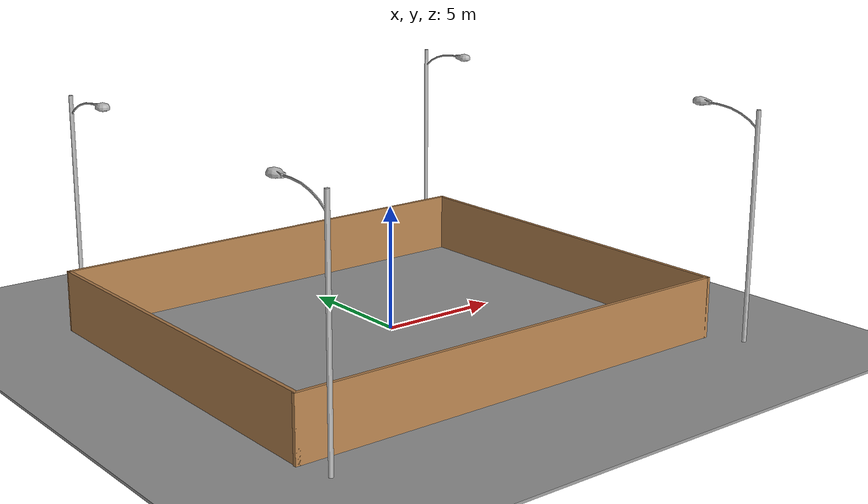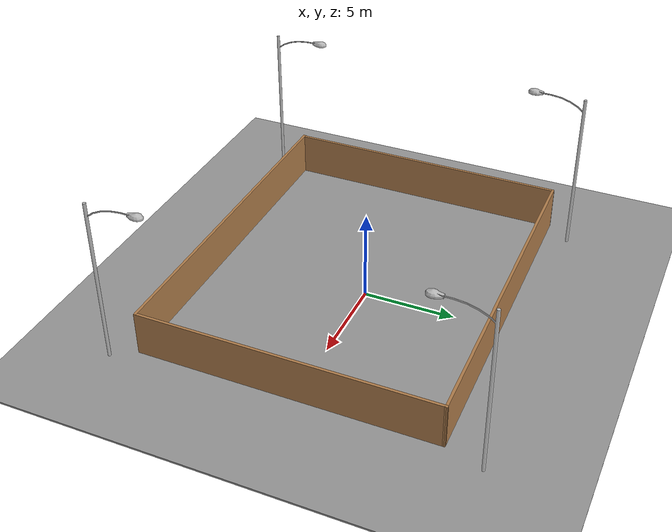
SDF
<sdf version="1.7">
 <world name="default">
  <light name="sun" type="directional">
   <pose>0 0 10 0 -0 0</pose>
   <diffuse>0.8 0.8 0.8 1</diffuse>
   <specular>0.2 0.2 0.2 1</specular>
   <attenuation>
    <range>1000</range>
    <constant>0.9</constant>
    <linear>0.01</linear>
    <quadratic>0.001</quadratic>
   </attenuation>
   <direction>-0.5 0.1 -0.9</direction>
   <spot><inner_angle>0</inner_angle><outer_angle>0</outer_angle><falloff>0</falloff></spot>
  </light>
  <model name="ground_plane">
   <static>1</static>
   <link name="link">
    <collision name="collision">
     <geometry><plane><normal>0 0 1</normal><size>100 100</size></plane></geometry>
     <surface>
      <contact><collide_bitmask>65535</collide_bitmask></contact>
      <friction><ode><mu>100</mu><mu2>50</mu2></ode></friction>
     </surface>
    </collision>
    <visual name="visual">
     <cast_shadows>0</cast_shadows>
     <geometry><plane><normal>0 0 1</normal><size>100 100</size></plane></geometry>
     <material>
      <script><uri>file://media/materials/scripts/gazebo.material</uri><name>Gazebo/Grey</name></script>
     </material>
    </visual>
   </link>
  </model>
  <gravity>0 0 -9.8</gravity>
  <magnetic_field>6e-06 2.3e-05 -4.2e-05</magnetic_field>
  <atmosphere type="adiabatic"/>
  <physics type="ode">
   <max_step_size>0.001</max_step_size>
   <real_time_factor>1</real_time_factor>
   <real_time_update_rate>1000</real_time_update_rate>
  </physics>
  <scene><ambient>0.4 0.4 0.4 1</ambient><background>0.7 0.7 0.7 1</background><shadows>1</shadows></scene>
  <spherical_coordinates>
   <surface_model>EARTH_WGS84</surface_model>
   <latitude_deg>0</latitude_deg>
   <longitude_deg>0</longitude_deg>
   <elevation>0</elevation>
   <heading_deg>0</heading_deg>
  </spherical_coordinates>
  <model name="ground_plane_0">
   <static>1</static>
   <link name="link">
    <collision name="collision">
     <geometry><plane><normal>0 0 1</normal><size>100 100</size></plane></geometry>
     <surface>
      <contact><collide_bitmask>65535</collide_bitmask></contact>
      <friction><ode><mu>100</mu><mu2>50</mu2></ode></friction>
     </surface>
    </collision>
    <visual name="visual">
     <cast_shadows>0</cast_shadows>
     <geometry><plane><normal>0 0 1</normal><size>100 100</size></plane></geometry>
     <material>
      <script><uri>file://media/materials/scripts/gazebo.material</uri><name>Gazebo/Grey</name></script>
     </material>
    </visual>
   </link>
   <pose>1.43216 2.13226 0 0 -0 0</pose>
  </model>
  <model name="Lamp Post">
   <static>1</static>
   <link name="link">
    <collision name="collision">
     <geometry><mesh><uri>model://lamp_post/meshes/lamp_post.dae</uri><scale>3 3 3</scale></mesh></geometry>
    </collision>
    <visual name="visual">
     <geometry><mesh><uri>model://lamp_post/meshes/lamp_post.dae</uri><scale>3 3 3</scale></mesh></geometry>
    </visual>
   </link>
   <pose>-9.05893 8.70312 0 0 -0 0</pose>
  </model>
  <model name="Lamp Post_0">
   <static>1</static>
   <link name="link">
    <collision name="collision">
     <geometry><mesh><uri>model://lamp_post/meshes/lamp_post.dae</uri><scale>3 3 3</scale></mesh></geometry>
    </collision>
    <visual name="visual">
     <geometry><mesh><uri>model://lamp_post/meshes/lamp_post.dae</uri><scale>3 3 3</scale></mesh></geometry>
    </visual>
   </link>
   <pose>9.5851 9.6775 0 0 -0 0</pose>
  </model>
  <model name="Lamp Post_1">
   <static>1</static>
   <link name="link">
    <collision name="collision">
     <geometry><mesh><uri>model://lamp_post/meshes/lamp_post.dae</uri><scale>3 3 3</scale></mesh></geometry>
    </collision>
    <visual name="visual">
     <geometry><mesh><uri>model://lamp_post/meshes/lamp_post.dae</uri><scale>3 3 3</scale></mesh></geometry>
    </visual>
   </link>
   <pose>9.70964 -9.75904 0 0 0 -3.12857</pose>
  </model>
  <model name="Lamp Post_2">
   <static>1</static>
   <link name="link">
    <collision name="collision">
     <geometry><mesh><uri>model://lamp_post/meshes/lamp_post.dae</uri><scale>3 3 3</scale></mesh></geometry>
    </collision>
    <visual name="visual">
     <geometry><mesh><uri>model://lamp_post/meshes/lamp_post.dae</uri><scale>3 3 3</scale></mesh></geometry>
    </visual>
   </link>
   <pose>-9.83074 -9.7994 0 0 0 -3.13887</pose>
  </model>
  <model name="arena">
   <pose>-0.665763 -0.436572 0 0 -0 0</pose>
   <link name="Wall_4">
    <collision name="Wall_4_Collision">
     <geometry><box><size>19.2427 0.15 2.5</size></box></geometry>
     <pose>0 0 1.25 0 -0 0</pose>
    </collision>
    <visual name="Wall_4_Visual">
     <pose>0 0 1.25 0 -0 0</pose>
     <geometry><box><size>19.2427 0.15 2.5</size></box></geometry>
     <material>
      <script><uri>file://media/materials/scripts/gazebo.material</uri><name>Gazebo/Wood</name></script>
      <ambient>1 1 1 1</ambient>
     </material>
     <meta><layer>0</layer></meta>
    </visual>
    <pose>-0.000489 -8.05049 0 0 -0 0</pose>
   </link>
   <link name="Wall_5">
    <collision name="Wall_5_Collision">
     <geometry><box><size>16.25 0.15 2.5</size></box></geometry>
     <pose>0 0 1.25 0 -0 0</pose>
    </collision>
    <visual name="Wall_5_Visual">
     <pose>0 0 1.25 0 -0 0</pose>
     <geometry><box><size>16.25 0.15 2.5</size></box></geometry>
     <material>
      <script><uri>file://media/materials/scripts/gazebo.material</uri><name>Gazebo/Wood</name></script>
      <ambient>1 1 1 1</ambient>
     </material>
     <meta><layer>0</layer></meta>
    </visual>
    <pose>9.54588 -0.000489 0 0 -0 1.5708</pose>
   </link>
   <link name="Wall_6">
    <collision name="Wall_6_Collision">
     <geometry><box><size>19.2039 0.15 2.5</size></box></geometry>
     <pose>0 0 1.25 0 -0 0</pose>
    </collision>
    <visual name="Wall_6_Visual">
     <pose>0 0 1.25 0 -0 0</pose>
     <geometry><box><size>19.2039 0.15 2.5</size></box></geometry>
     <material>
      <script><uri>file://media/materials/scripts/gazebo.material</uri><name>Gazebo/Wood</name></script>
      <ambient>1 1 1 1</ambient>
     </material>
     <meta><layer>0</layer></meta>
    </visual>
    <pose>0.019739 7.92451 0 0 -0 -3.12847</pose>
   </link>
   <link name="Wall_7">
    <collision name="Wall_7_Collision">
     <geometry><box><size>16 0.15 2.5</size></box></geometry>
     <pose>0 0 1.25 0 -0 0</pose>
    </collision>
    <visual name="Wall_7_Visual">
     <pose>0 0 1.25 0 -0 0</pose>
     <geometry><box><size>16 0.15 2.5</size></box></geometry>
     <material>
      <script><uri>file://media/materials/scripts/gazebo.material</uri><name>Gazebo/Wood</name></script>
      <ambient>1 1 1 1</ambient>
     </material>
     <meta><layer>0</layer></meta>
    </visual>
    <pose>-9.5064 -0.125489 0 0 -0 -1.5708</pose>
   </link>
   <static>1</static>
  </model>
 </world>
</sdf>
